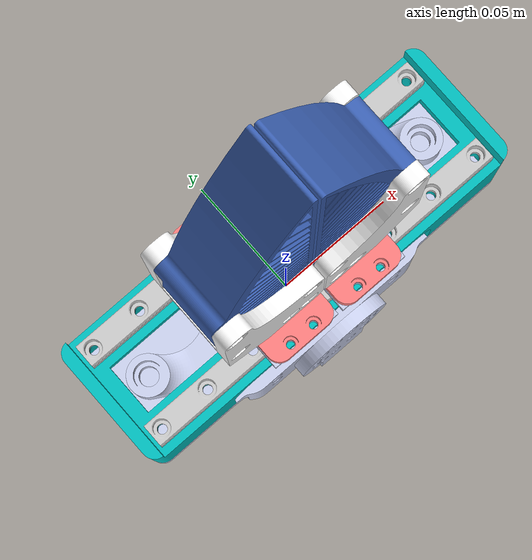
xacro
<?xml version="1.0"?>
<robot xmlns:xacro="http://www.ros.org/wiki/xacro" name="soft_two_fingers">
  <xacro:include filename="two-finger-gripper.urdf.xacro" />

  <xacro:arg name="prefix" default="" />

  <link name="world" />

  <xacro:two_finger_gripper
    parent="world"
    prefix="$(arg prefix)"
    xyz="0 0 0"
    rpy="0 0 0" />
</robot>

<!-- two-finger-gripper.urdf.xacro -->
<robot xmlns:xacro="http://www.ros.org/wiki/xacro">
    <xacro:macro name="two_finger_gripper" params="parent prefix:='' xyz:='0 0 0' rpy:='0 0 0'">
        <joint name="${prefix}gripper_parent_to_root" type="fixed">
            <parent link="${parent}" />
            <child link="${prefix}gripper_root" />
            <origin xyz="${xyz}" rpy="${rpy}" />
        </joint>

        <link name="${prefix}gripper_base">
            <inertial>
                <mass value="9.60074e-05" />
                <origin xyz="0.00989949 0.0275 0.013491" rpy="0 -0 0" />
                <inertia ixx="4.52785e-08" ixy="0" ixz="0" iyy="1.33505e-07" iyz="0" izz="1.57011e-07" />
            </inertial>
            <visual>
                <origin xyz="-0.0701005 0.0525 0.0273995" rpy="0 -0 0" />
                <geometry>
                    <mesh filename="package://gripper_description/meshes/soft-two-finger-gripper/Base.stl" scale="1 1 1" />
                </geometry>
                <material name="0.796078_0.823529_0.937255_0.000000_0.000000">
                    <color rgba="0.796078 0.823529 0.937255 1" />
                </material>
            </visual>
        </link>

        <link name="${prefix}gripper_block">
            <inertial>
                <mass value="1.56518e-06" />
                <origin xyz="-0.005 0.0015 0.0075" rpy="0 -0 0" />
                <inertia ixx="5.13549e-11" ixy="0" ixz="0" iyy="1.51997e-10" iyz="0" izz="1.0299e-10" />
            </inertial>
            <visual>
                <origin xyz="-0.005 0.003 0.0075" rpy="0 -0 0" />
                <geometry>
                    <mesh filename="package://gripper_description/meshes/soft-two-finger-gripper/Block.stl" scale="1 1 1" />
                </geometry>
                <material name="0.796078_0.823529_0.937255_0.000000_0.000000">
                    <color rgba="0.796078 0.823529 0.937255 1" />
                </material>
            </visual>
        </link>

        <link name="${prefix}gripper_block_1">
            <inertial>
                <mass value="1.56518e-06" />
                <origin xyz="-0.01375 -2.1684e-19 0" rpy="0 -0 0" />
                <inertia ixx="5.13549e-11" ixy="0" ixz="0" iyy="1.51997e-10" iyz="0" izz="1.0299e-10" />
            </inertial>
            <visual>
                <origin xyz="-0.01375 0.0015 0" rpy="0 -0 0" />
                <geometry>
                    <mesh filename="package://gripper_description/meshes/soft-two-finger-gripper/Block.stl" scale="1 1 1" />
                </geometry>
                <material name="0.796078_0.823529_0.937255_0.000000_0.000000">
                    <color rgba="0.796078 0.823529 0.937255 1" />
                </material>
            </visual>
        </link>

        <link name="${prefix}gripper_block_2">
            <inertial>
                <mass value="1.56518e-06" />
                <origin xyz="0.01375 -2.1684e-19 0" rpy="0 -0 0" />
                <inertia ixx="5.13549e-11" ixy="0" ixz="0" iyy="1.51997e-10" iyz="0" izz="1.0299e-10" />
            </inertial>
            <visual>
                <origin xyz="0.01375 0.0015 0" rpy="0 -0 0" />
                <geometry>
                    <mesh filename="package://gripper_description/meshes/soft-two-finger-gripper/Block.stl" scale="1 1 1" />
                </geometry>
                <material name="0.796078_0.823529_0.937255_0.000000_0.000000">
                    <color rgba="0.796078 0.823529 0.937255 1" />
                </material>
            </visual>
        </link>

        <link name="${prefix}gripper_block_3">
            <inertial>
                <mass value="1.56518e-06" />
                <origin xyz="0.005 0.0015 -0.0075" rpy="0 -0 0" />
                <inertia ixx="5.13549e-11" ixy="0" ixz="0" iyy="1.51997e-10" iyz="0" izz="1.0299e-10" />
            </inertial>
            <visual>
                <origin xyz="0.005 0.003 -0.0075" rpy="0 -0 0" />
                <geometry>
                    <mesh filename="package://gripper_description/meshes/soft-two-finger-gripper/Block.stl" scale="1 1 1" />
                </geometry>
                <material name="0.796078_0.823529_0.937255_0.000000_0.000000">
                    <color rgba="0.796078 0.823529 0.937255 1" />
                </material>
            </visual>
        </link>

        <link name="${prefix}gripper_clamp">
            <inertial>
                <mass value="2.4104e-05" />
                <origin xyz="2.35624e-13 -5.97063e-12 0.018844" rpy="0 -0 0" />
                <inertia ixx="1.14843e-08" ixy="0" ixz="0" iyy="2.35513e-08" iyz="0" izz="1.95862e-08" />
            </inertial>
            <visual>
                <origin xyz="-0.0275 -3.46945e-18 0.005" rpy="0 -0 0" />
                <geometry>
                    <mesh filename="package://gripper_description/meshes/soft-two-finger-gripper/Clamp.stl" scale="1 1 1" />
                </geometry>
                <material name="0.796078_0.823529_0.937255_0.000000_0.000000">
                    <color rgba="0.796078 0.823529 0.937255 1" />
                </material>
            </visual>
        </link>

        <link name="${prefix}gripper_dynamixel_xm430_w350_r">
            <inertial>
                <mass value="4.41073e-05" />
                <origin xyz="-0.0166389 -0.00539576 -0.0143" rpy="0 -0 0" />
                <inertia ixx="7.26484e-09" ixy="1.25677e-10" ixz="0" iyy="1.08932e-08" iyz="0" izz="1.24382e-08" />
            </inertial>
            <visual>
                <origin xyz="-0.0396 0.011 -0.0286" rpy="0 -0 0" />
                <geometry>
                    <mesh filename="package://gripper_description/meshes/soft-two-finger-gripper/dynamixel_XM430_W350_R.stl" scale="1 1 1" />
                </geometry>
                <material name="0.501961_0.501961_0.501961_0.000000_0.000000">
                    <color rgba="0.501961 0.501961 0.501961 1" />
                </material>
            </visual>
        </link>

        <link name="${prefix}gripper_gipper_case">
            <inertial>
                <mass value="2.86395e-05" />
                <origin xyz="0.0180537 -0.0152097 -0.0161438" rpy="0 -0 0" />
                <inertia ixx="1.17204e-08" ixy="-4.70838e-13" ixz="1.22897e-09" iyy="9.20144e-09" iyz="-3.20141e-12" izz="8.16469e-09" />
            </inertial>
            <visual>
                <origin xyz="-0.006 -0.0152 0.0847" rpy="0 -0 0" />
                <geometry>
                    <mesh filename="package://gripper_description/meshes/soft-two-finger-gripper/Gipper_case.stl" scale="1 1 1" />
                </geometry>
                <material name="1.000000_1.000000_1.000000_0.000000_0.000000">
                    <color rgba="1 1 1 1" />
                </material>
            </visual>
        </link>

        <link name="${prefix}gripper_gipper_case_1">
            <inertial>
                <mass value="2.86395e-05" />
                <origin xyz="0.0180537 -0.0152097 -0.0161438" rpy="0 -0 0" />
                <inertia ixx="1.17204e-08" ixy="-4.70838e-13" ixz="1.22897e-09" iyy="9.20144e-09" iyz="-3.20141e-12" izz="8.16469e-09" />
            </inertial>
            <visual>
                <origin xyz="-0.006 -0.0152 0.0847" rpy="0 -0 0" />
                <geometry>
                    <mesh filename="package://gripper_description/meshes/soft-two-finger-gripper/Gipper_case.stl" scale="1 1 1" />
                </geometry>
                <material name="1.000000_1.000000_1.000000_0.000000_0.000000">
                    <color rgba="1 1 1 1" />
                </material>
            </visual>
        </link>

        <link name="${prefix}gripper_gripper_support">
            <inertial>
                <mass value="1.89595e-05" />
                <origin xyz="0.00730328 -0.00829719 0.0251" rpy="0 -0 0" />
                <inertia ixx="3.98339e-09" ixy="2.93394e-10" ixz="0" iyy="3.42247e-09" iyz="1.43098e-15" izz="2.29475e-09" />
            </inertial>
            <visual>
                <origin xyz="-0.0085 0 -0.0034" rpy="0 -0 0" />
                <geometry>
                    <mesh filename="package://gripper_description/meshes/soft-two-finger-gripper/Gripper_support.stl" scale="1 1 1" />
                </geometry>
                <material name="1.000000_0.501961_0.501961_0.000000_0.000000">
                    <color rgba="1 0.501961 0.501961 1" />
                </material>
            </visual>
        </link>

        <link name="${prefix}gripper_gripper_support_1">
            <inertial>
                <mass value="1.89595e-05" />
                <origin xyz="0.00730328 -0.00829719 0.0251" rpy="0 -0 0" />
                <inertia ixx="3.98339e-09" ixy="2.93394e-10" ixz="0" iyy="3.42247e-09" iyz="1.43098e-15" izz="2.29475e-09" />
            </inertial>
            <visual>
                <origin xyz="-0.0085 0 -0.0034" rpy="0 -0 0" />
                <geometry>
                    <mesh filename="package://gripper_description/meshes/soft-two-finger-gripper/Gripper_support.stl" scale="1 1 1" />
                </geometry>
                <material name="1.000000_0.501961_0.501961_0.000000_0.000000">
                    <color rgba="1 0.501961 0.501961 1" />
                </material>
            </visual>
        </link>

        <link name="${prefix}gripper_link">
            <inertial>
                <mass value="3.47229e-06" />
                <origin xyz="-0.0214556 -0.00340137 -0.00312234" rpy="0 -0 0" />
                <inertia ixx="1.05957e-10" ixy="-3.94569e-11" ixz="3.16674e-11" iyy="7.05198e-10" iyz="6.17955e-12" izz="6.38214e-10" />
            </inertial>
            <visual>
                <origin xyz="-0.035 0 0" rpy="0 -0 0" />
                <geometry>
                    <mesh filename="package://gripper_description/meshes/soft-two-finger-gripper/Link.stl" scale="1 1 1" />
                </geometry>
                <material name="0.796078_0.823529_0.937255_0.000000_0.000000">
                    <color rgba="0.796078 0.823529 0.937255 1" />
                </material>
            </visual>
        </link>

        <link name="${prefix}gripper_link_1">
            <inertial>
                <mass value="3.47229e-06" />
                <origin xyz="-0.0214556 -0.00340137 -0.00312234" rpy="0 -0 0" />
                <inertia ixx="1.05957e-10" ixy="-3.94569e-11" ixz="3.16674e-11" iyy="7.05198e-10" iyz="6.17955e-12" izz="6.38214e-10" />
            </inertial>
            <visual>
                <origin xyz="-0.035 0 0" rpy="0 -0 0" />
                <geometry>
                    <mesh filename="package://gripper_description/meshes/soft-two-finger-gripper/Link.stl" scale="1 1 1" />
                </geometry>
                <material name="0.796078_0.823529_0.937255_0.000000_0.000000">
                    <color rgba="0.796078 0.823529 0.937255 1" />
                </material>
            </visual>
        </link>

        <link name="${prefix}gripper_mgnr09r315hm">
            <inertial>
                <mass value="7.10975e-06" />
                <origin xyz="0.07 -0.00307814 -5.52605e-06" rpy="0 -0 0" />
                <inertia ixx="7.3598e-11" ixy="0" ixz="0" iyy="1.27398e-08" iyz="1.15967e-13" izz="1.27163e-08" />
            </inertial>
            <visual>
                <origin xyz="-0.0075 0 0.0045" rpy="0 -0 0" />
                <geometry>
                    <mesh filename="package://gripper_description/meshes/soft-two-finger-gripper/MGNR09R315HM.stl" scale="1 1 1" />
                </geometry>
                <material name="0.796078_0.796078_0.796078_0.000000_0.000000">
                    <color rgba="0.796078 0.796078 0.796078 1" />
                </material>
            </visual>
        </link>

        <link name="${prefix}gripper_mgnr09r315hm_1">
            <inertial>
                <mass value="7.10975e-06" />
                <origin xyz="0.07 -0.00307814 -5.52605e-06" rpy="0 -0 0" />
                <inertia ixx="7.3598e-11" ixy="0" ixz="0" iyy="1.27398e-08" iyz="1.15967e-13" izz="1.27163e-08" />
            </inertial>
            <visual>
                <origin xyz="-0.0075 0 0.0045" rpy="0 -0 0" />
                <geometry>
                    <mesh filename="package://gripper_description/meshes/soft-two-finger-gripper/MGNR09R315HM.stl" scale="1 1 1" />
                </geometry>
                <material name="0.796078_0.796078_0.796078_0.000000_0.000000">
                    <color rgba="0.796078 0.796078 0.796078 1" />
                </material>
            </visual>
        </link>

        <link name="${prefix}gripper_root" />

        <link name="${prefix}gripper_small_motor_mount">
            <inertial>
                <mass value="1.0786e-05" />
                <origin xyz="0.000264358 -0.00445466 0.000270164" rpy="0 -0 0" />
                <inertia ixx="7.45917e-10" ixy="1.29287e-13" ixz="-4.93148e-10" iyy="3.5822e-09" iyz="1.32127e-13" izz="2.98218e-09" />
            </inertial>
            <visual>
                <origin xyz="0 0 0" rpy="0 -0 0" />
                <geometry>
                    <mesh filename="package://gripper_description/meshes/soft-two-finger-gripper/Small_motor_mount.stl" scale="1 1 1" />
                </geometry>
                <material name="0.796078_0.823529_0.937255_0.000000_0.000000">
                    <color rgba="0.796078 0.823529 0.937255 1" />
                </material>
            </visual>
        </link>

        <link name="${prefix}gripper_small_motor_test_2_base">
            <inertial>
                <mass value="4.70869e-05" />
                <origin xyz="-0.076 -0.023021 0.021" rpy="0 -0 0" />
                <inertia ixx="1.97752e-08" ixy="0" ixz="0" iyy="1.84606e-07" iyz="0" izz="1.73024e-07" />
            </inertial>
            <visual>
                <origin xyz="-0.156 -0.026 -0.004" rpy="0 -0 0" />
                <geometry>
                    <mesh filename="package://gripper_description/meshes/soft-two-finger-gripper/Small_Motor_test_2_Base.stl" scale="1 1 1" />
                </geometry>
                <material name="0.000000_0.752941_0.752941_0.000000_0.000000">
                    <color rgba="0 0.752941 0.752941 1" />
                </material>
            </visual>
        </link>

        <link name="${prefix}gripper_soft_gripper_finger">
            <inertial>
                <mass value="4.70738e-05" />
                <origin xyz="-0.0173609 0.0381915 -0.0129" rpy="0 -0 0" />
                <inertia ixx="5.05765e-08" ixy="5.83018e-09" ixz="0" iyy="9.02641e-09" iyz="0" izz="5.43806e-08" />
            </inertial>
            <visual>
                <origin xyz="-0.035 -0.005 0" rpy="0 -0 0" />
                <geometry>
                    <mesh filename="package://gripper_description/meshes/soft-two-finger-gripper/soft_gripper_finger.stl" scale="1 1 1" />
                </geometry>
                <material name="0.231373_0.380392_0.705882_0.000000_0.000000">
                    <color rgba="0.231373 0.380392 0.705882 1" />
                </material>
            </visual>
        </link>

        <link name="${prefix}gripper_soft_gripper_finger_1">
            <inertial>
                <mass value="4.70738e-05" />
                <origin xyz="-0.0173609 0.0381915 -0.0129" rpy="0 -0 0" />
                <inertia ixx="5.05765e-08" ixy="5.83018e-09" ixz="0" iyy="9.02641e-09" iyz="0" izz="5.43806e-08" />
            </inertial>
            <visual>
                <origin xyz="-0.035 -0.005 0" rpy="0 -0 0" />
                <geometry>
                    <mesh filename="package://gripper_description/meshes/soft-two-finger-gripper/soft_gripper_finger.stl" scale="1 1 1" />
                </geometry>
                <material name="0.231373_0.380392_0.705882_0.000000_0.000000">
                    <color rgba="0.231373 0.380392 0.705882 1" />
                </material>
            </visual>
        </link>

        <joint name="${prefix}gripper_fastened_1" type="fixed">
            <origin xyz="3.46945e-18 6.93889e-18 4.33681e-18" rpy="2.13568e-32 5.31737e-33 -1.5708" />
            <axis xyz="0 0 1" />
            <parent link="${prefix}gripper_root" />
            <child link="${prefix}gripper_clamp" />
        </joint>

        <joint name="${prefix}gripper_fastened_2" type="fixed">
            <origin xyz="0.0275 -0.00989949 0.027421" rpy="-1.44607e-16 -2.00374e-16 1.5708" />
            <axis xyz="1.73472e-16 -1 -2.00618e-32" />
            <parent link="${prefix}gripper_clamp" />
            <child link="${prefix}gripper_base" />
        </joint>

        <joint name="${prefix}gripper_fastened_3" type="fixed">
            <origin xyz="-0.01875 -0.0015 -0.0075" rpy="1.52943e-16 -5.62444e-17 1.21135e-17" />
            <axis xyz="0 1 0" />
            <parent link="${prefix}gripper_block_1" />
            <child link="${prefix}gripper_gripper_support" />
        </joint>

        <joint name="${prefix}gripper_fastened_4" type="fixed">
            <origin xyz="0 2.77556e-17 0.0502" rpy="6.13299e-17 -2.498e-16 -5.50002e-31" />
            <axis xyz="0 -1 0" />
            <parent link="${prefix}gripper_gripper_support" />
            <child link="${prefix}gripper_block_3" />
        </joint>

        <joint name="${prefix}gripper_fastened_5" type="fixed">
            <origin xyz="0.01875 -0.0015 0.0075" rpy="3.14159 1.8735e-16 -3.14159" />
            <axis xyz="0 1 0" />
            <parent link="${prefix}gripper_block_2" />
            <child link="${prefix}gripper_gripper_support_1" />
        </joint>

        <joint name="${prefix}gripper_fastened_6" type="fixed">
            <origin xyz="-0.146 -0.031 0.0035" rpy="-8.29972e-17 2.77556e-17 2.75156e-17" />
            <axis xyz="0 1 0" />
            <parent link="${prefix}gripper_small_motor_test_2_base" />
            <child link="${prefix}gripper_mgnr09r315hm_1" />
        </joint>

        <joint name="${prefix}gripper_fastened_7" type="fixed">
            <origin xyz="-0.146 -0.031 0.0385" rpy="-1.7249e-16 2.60589e-30 2.78835e-17" />
            <axis xyz="0 1 0" />
            <parent link="${prefix}gripper_small_motor_test_2_base" />
            <child link="${prefix}gripper_mgnr09r315hm" />
        </joint>

        <joint name="${prefix}gripper_fastened_8" type="fixed">
            <origin xyz="3.46945e-18 -1.38778e-17 0.0502" rpy="3.14159 -3.26128e-16 -3.14159" />
            <axis xyz="0 -1 0" />
            <parent link="${prefix}gripper_gripper_support_1" />
            <child link="${prefix}gripper_block" />
        </joint>

        <joint name="${prefix}gripper_fastened_9" type="fixed">
            <origin xyz="0.0135 -0.013 0.0403" rpy="1.5708 -7.21645e-16 -3.14159" />
            <axis xyz="0 -1 0" />
            <parent link="${prefix}gripper_gripper_support" />
            <child link="${prefix}gripper_gipper_case" />
        </joint>

        <joint name="${prefix}gripper_fastened_10" type="fixed">
            <origin xyz="0.0135 -0.013 0.0403" rpy="1.5708 -5.34295e-16 -3.14159" />
            <axis xyz="0 -1 0" />
            <parent link="${prefix}gripper_gripper_support_1" />
            <child link="${prefix}gripper_gipper_case_1" />
        </joint>

        <joint name="${prefix}gripper_fastened_11" type="fixed">
            <origin xyz="0.0858995 0.0065 0.0273995" rpy="-1.5708 -3.37038e-32 -1.3886e-31" />
            <axis xyz="0 1 0" />
            <parent link="${prefix}gripper_base" />
            <child link="${prefix}gripper_small_motor_test_2_base" />
        </joint>

        <joint name="${prefix}gripper_fastened_12" type="fixed">
            <origin xyz="-0.0182005 0.04185 0.0213995" rpy="1.5708 -3.38813e-21 3.14159" />
            <axis xyz="0 0 1" />
            <parent link="${prefix}gripper_base" />
            <child link="${prefix}gripper_dynamixel_xm430_w350_r" />
        </joint>

        <joint name="${prefix}gripper_fastened_13" type="fixed">
            <origin xyz="0.0289911 -0.0021 -0.0217317" rpy="-1.5708 -4.30211e-16 4.30211e-16" />
            <axis xyz="0 0 -1" />
            <parent link="${prefix}gripper_gipper_case_1" />
            <child link="${prefix}gripper_soft_gripper_finger" />
        </joint>

        <joint name="${prefix}gripper_fastened_14" type="fixed">
            <origin xyz="0.0289911 -0.0021 -0.0217317" rpy="-1.5708 -7.02888e-17 -7.02888e-17" />
            <axis xyz="0 0 1" />
            <parent link="${prefix}gripper_gipper_case" />
            <child link="${prefix}gripper_soft_gripper_finger_1" />
        </joint>

        <joint name="${prefix}gripper_fastened_15" type="fixed">
            <origin xyz="-0.0281 0.0135 -0.0143" rpy="-1.7249e-16 -1.38775e-15 3.14159" />
            <axis xyz="0 1 0" />
            <parent link="${prefix}gripper_dynamixel_xm430_w350_r" />
            <child link="${prefix}gripper_small_motor_mount" />
        </joint>

        <joint name="${prefix}gripper_fastened_16" type="fixed">
            <origin xyz="0.027 -0.009 6.62041e-18" rpy="-3.14159 -2.01204e-16 3.14159" />
            <axis xyz="0 1 0" />
            <parent link="${prefix}gripper_small_motor_mount" />
            <child link="${prefix}gripper_link_1" />
        </joint>

        <joint name="${prefix}gripper_fastened_17" type="fixed">
            <origin xyz="-0.027 -0.009 -6.60686e-18" rpy="-1.87354e-30 -2.385e-20 3.42661e-30" />
            <axis xyz="0 1 0" />
            <parent link="${prefix}gripper_small_motor_mount" />
            <child link="${prefix}gripper_link" />
        </joint>

        <joint name="${prefix}gripper_planar_4" type="prismatic">
            <origin xyz="0.071 -0.00819861 -5.31818e-06" rpy="2.35595e-74 2.8026e-45 1.68126e-29" />
            <axis xyz="-1 0 0" />
            <parent link="${prefix}gripper_mgnr09r315hm" />
            <child link="${prefix}gripper_block_2" />
            <limit effort="1" velocity="1" lower="-0.045" upper="0" />
        </joint>

        <joint name="${prefix}gripper_planar_5" type="prismatic">
            <origin xyz="0.069 -0.00819861 -5.31818e-06" rpy="-1.71374e-30 -1.10289e-16 2.31292e-16" />
            <axis xyz="1 0 0" />
            <parent link="${prefix}gripper_mgnr09r315hm_1" />
            <child link="${prefix}gripper_block_1" />
            <limit effort="1" velocity="1" lower="-0.045" upper="0" />
        </joint>
    </xacro:macro>
</robot>
